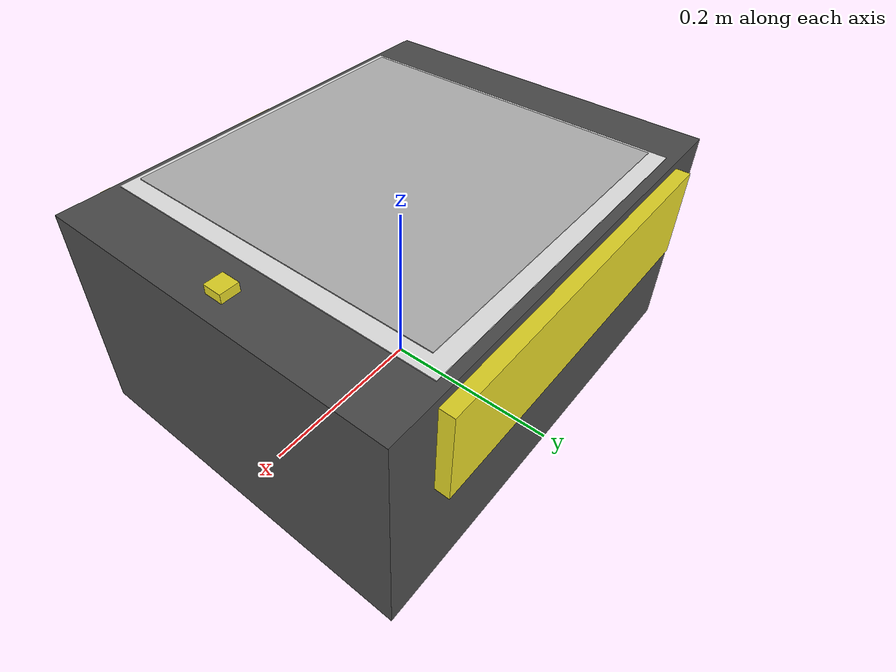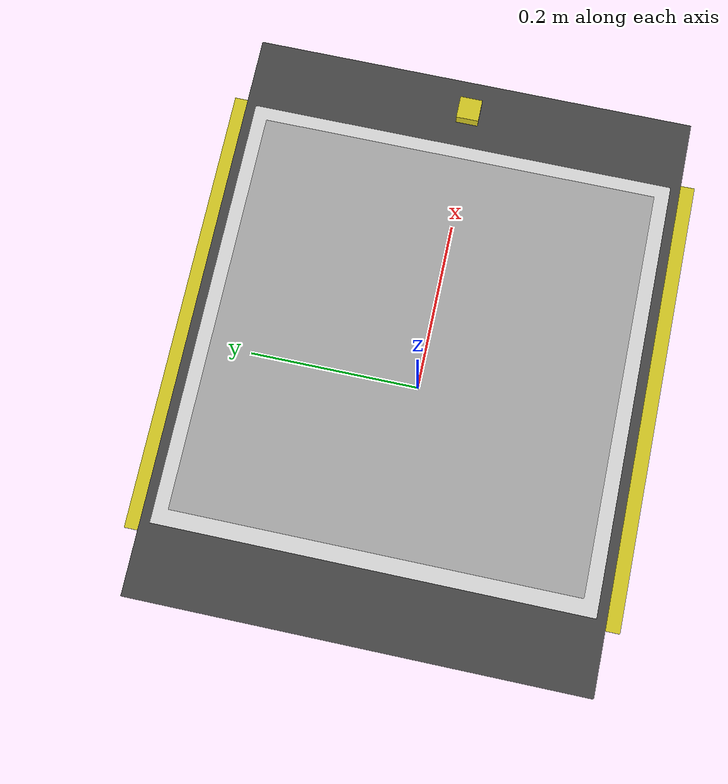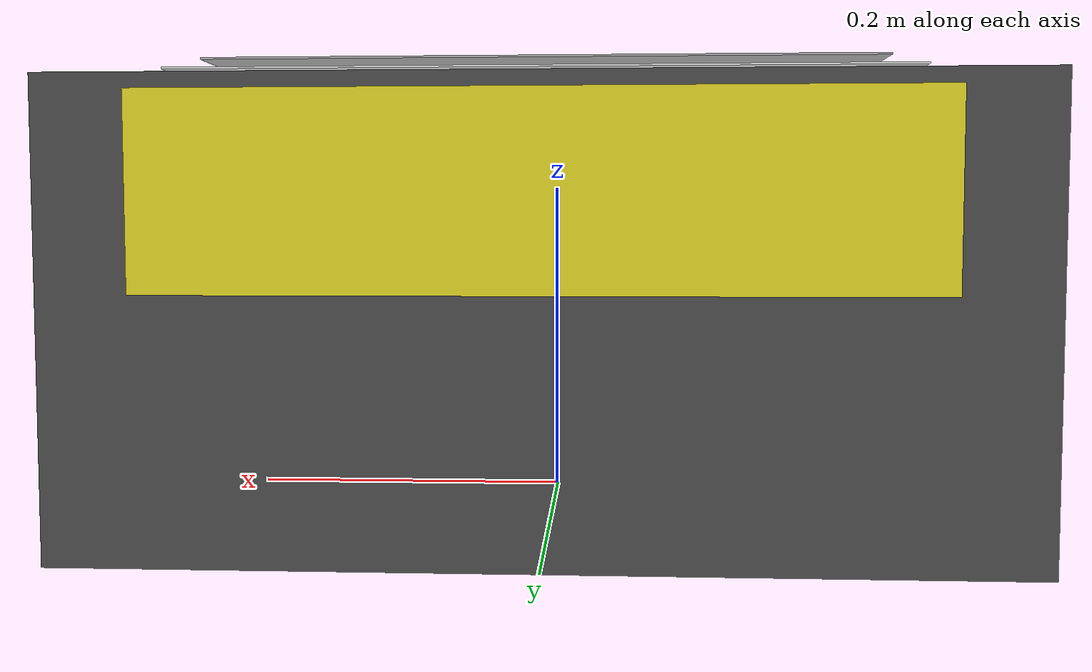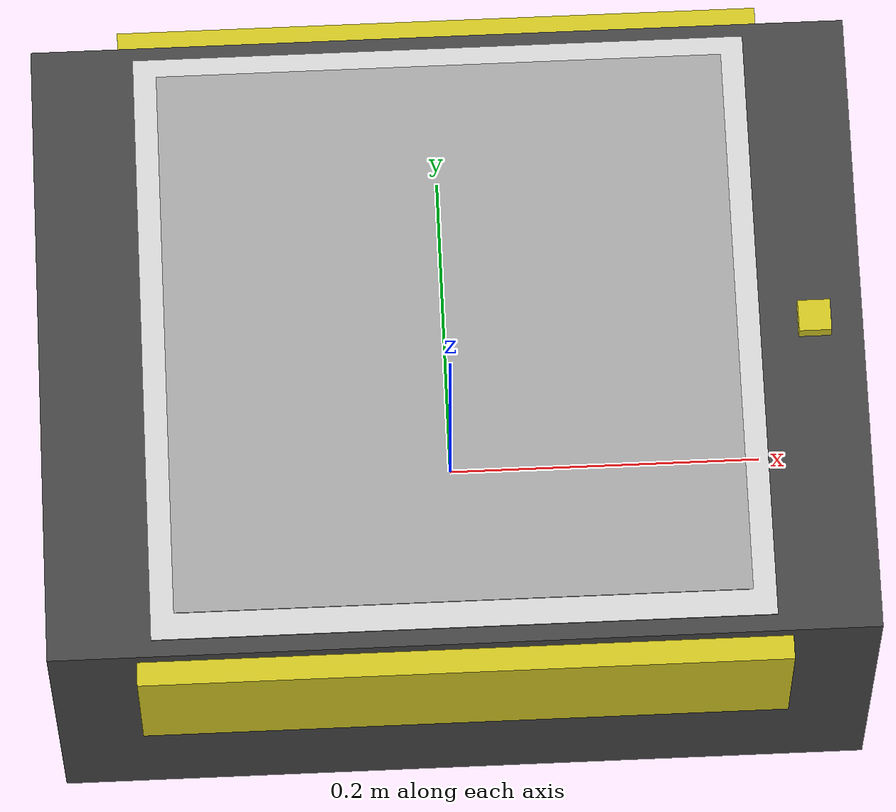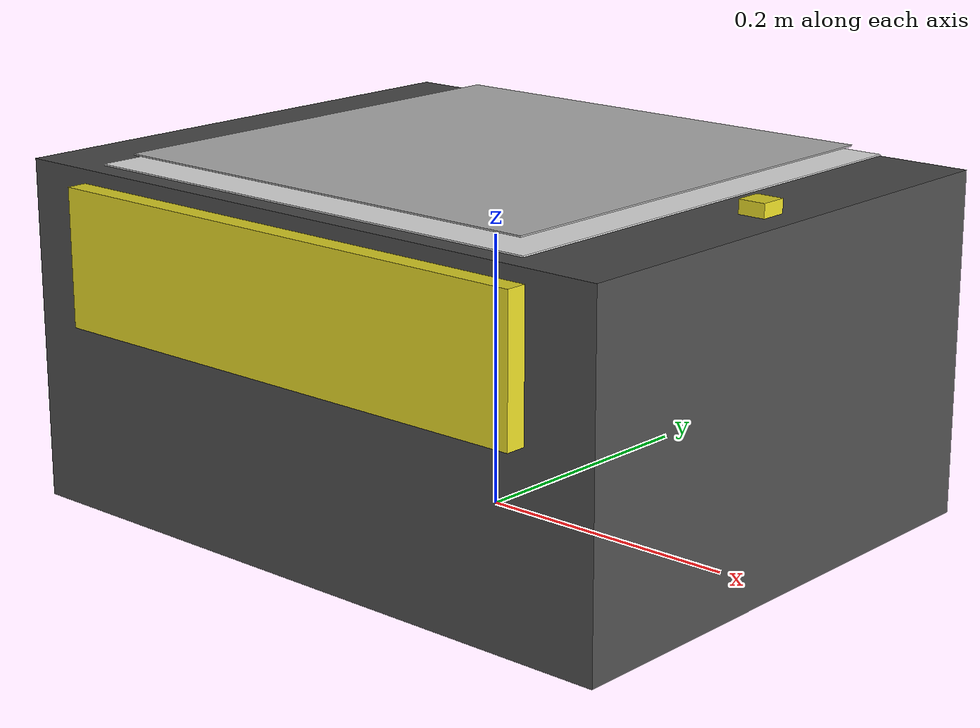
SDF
<?xml version="1.0" ?>
<sdf version='1.5'>
  <model name='rgv2'>
    <static>true</static>
    <link name="link">
        <visual name="body">
          <pose>0 0 0.125 0 0 0</pose>
          <geometry>
            <box>
                <size>0.508 0.4 0.25</size>
            </box>
          </geometry>
          <material>
            <script>
              <uri>file://media/materials/scripts/gazebo.material</uri>
              <name>Gazebo/DarkGrey</name>
            </script>
          </material>
        </visual>
        <visual name="rim">
          <pose>0 0 0.19 0 0 0</pose>
          <geometry>
            <box>
                <size>0.4 0.43 0.1</size>
            </box>
          </geometry>
          <material>
            <script>
              <uri>file://media/materials/scripts/gazebo.material</uri>
              <name>Gazebo/Yellow</name>
            </script>
          </material>
        </visual>
        <visual name="front">
          <pose>0.224 0 0.25 0 0 0</pose>
          <geometry>
            <box>
                <size>0.02 0.02 0.02</size>
            </box>
          </geometry>
          <material>
            <script>
              <uri>file://media/materials/scripts/gazebo.material</uri>
              <name>Gazebo/Yellow</name>
            </script>
          </material>
        </visual>
        <visual name="tag">
          <pose>0 0 0.26 0 0 0</pose>
          <geometry>
            <box>
                <size>0.352 0.352 0.001</size>
            </box>
          </geometry>
          <material>
            <script>
                <uri>model://rgv2/materials/scripts/tag2.material</uri>
                <uri>model://rgv2/materials/textures</uri>
                <name>tag2</name>
            </script>
          </material>
        </visual>
        <visual name="tag_white_edge">
          <pose>0 0 0.253 0 0 0</pose>
          <geometry>
            <box>
                <size>0.381 0.381 0.001</size>
            </box>
          </geometry>
          <material>
            <script>
              <uri>file://media/materials/scripts/gazebo.material</uri>
              <name>Gazebo/White</name>
            </script>
          </material>
        </visual>
    </link>
  </model>
</sdf>
